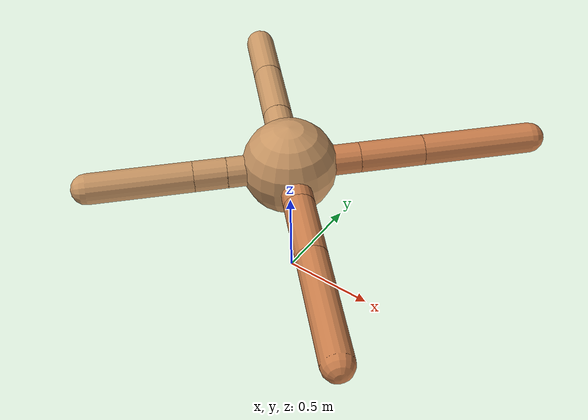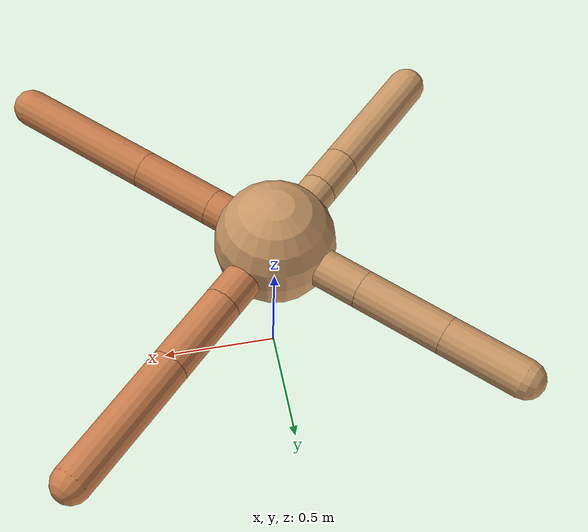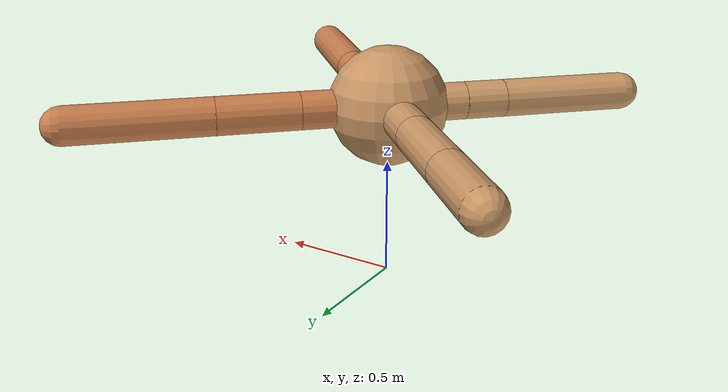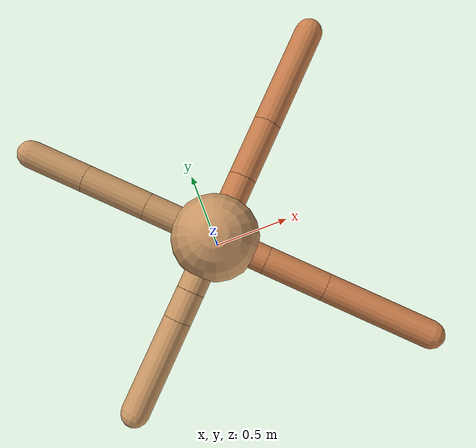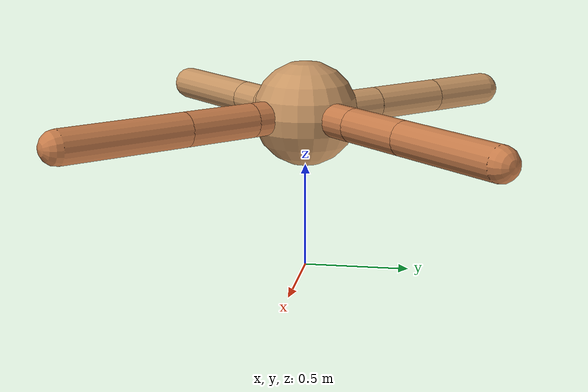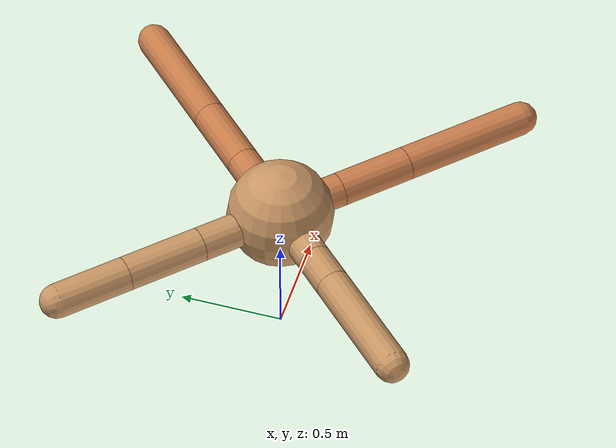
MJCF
<mujoco model="ant">
  <compiler angle="degree" coordinate="local" inertiafromgeom="true" />
  <option integrator="RK4" timestep="0.01" />
  <custom>
    <numeric data="0.0 0.0 0.55 1.0 0.0 0.0 0.0 0.0 1.0 0.0 -1.0 0.0 -1.0 0.0 1.0" name="init_qpos" />
  </custom>
  <default>
    <joint armature="1" damping="1" limited="true" />
    <geom conaffinity="0" condim="3" density="5.0" friction="1.5 0.1 0.1" margin="0.01" rgba="0.8 0.6 0.4 1" />
  </default>
  <worldbody>
    <body name="torso" pos="0 0 0.75">
      <geom name="torso_geom" pos="0 0 0" size="0.25" type="sphere" />

      <body name="front_left_leg" pos="0 0 0">
        <geom fromto="0.0 0.0 0.0 0.26120589891639706 0.26120589891639706 0.0" name="aux_1_geom" size="0.08" type="capsule" rgba=".8 .5 .3 1" />
        <body name="aux_1" pos="0.26120589891639706 0.26120589891639706 0.0">
          <joint axis="0 0 1" name="hip_1" pos="0.0 0.0 0.0" range="-40 40" type="hinge" />
          <geom fromto="0.0 0.0 0.0 0.24183796412765238 0.24183796412765238 0.0" name="left_leg_geom" size="0.08" type="capsule" rgba=".8 .5 .3 1" />
          <body pos="0.24183796412765238 0.24183796412765238 0.0" name="front_left_foot">
            <joint axis="-1 1 0" name="ankle_1" pos="0.0 0.0 0.0" range="30 100" type="hinge" />
            <geom fromto="0.0 0.0 0.0 0.41685504382933297 0.41685504382933297 0.0" name="left_ankle_geom" size="0.08" type="capsule" rgba=".8 .5 .3 1" />
          </body>
        </body>
      </body>
      <body name="front_right_leg" pos="0 0 0">
        <geom fromto="0.0 0.0 0.0 -0.2954890269431701 0.2954890269431701 0.0" name="aux_2_geom" size="0.08" type="capsule" />
        <body name="aux_2" pos="-0.2954890269431701 0.2954890269431701 0.0">
          <joint axis="0 0 1" name="hip_2" pos="0.0 0.0 0.0" range="-40 40" type="hinge" />
          <geom fromto="0.0 0.0 0.0 -0.2679755688614911 0.2679755688614911 0.0" name="right_leg_geom" size="0.08" type="capsule" />
          <body pos="-0.2679755688614911 0.2679755688614911 0.0" name="front_right_foot">
            <joint axis="1 1 0" name="ankle_2" pos="0.0 0.0 0.0" range="-100 -30" type="hinge" />
            <geom fromto="0.0 0.0 0.0 -0.24313109668159189 0.24313109668159189 0.0" name="right_ankle_geom" size="0.08" type="capsule" />
          </body>
        </body>
      </body>
      <body name="left_back_leg" pos="0 0 0">
        <geom fromto="0.0 0.0 0.0 -0.23222691743648377 -0.23222691743648377 0.0" name="aux_3_geom" size="0.08" type="capsule" />
        <body name="aux_3" pos="-0.23222691743648377 -0.23222691743648377 0.0">
          <joint axis="0 0 1" name="hip_3" pos="0.0 0.0 0.0" range="-40 40" type="hinge" />
          <geom fromto="0.0 0.0 0.0 -0.12157698370652259 -0.12157698370652259 0.0" name="back_leg_geom" size="0.08" type="capsule" />
          <body pos="-0.12157698370652259 -0.12157698370652259 0.0" name="left_back_foot">
            <joint axis="-1 1 0" name="ankle_3" pos="0.0 0.0 0.0" range="-100 -30" type="hinge" />
            <geom fromto="0.0 0.0 0.0 -0.382875741012376 -0.382875741012376 0.0" name="third_ankle_geom" size="0.08" type="capsule" />
          </body>
        </body>
      </body>
      <body name="right_back_leg" pos="0 0 0">
        <geom fromto="0.0 0.0 0.0 0.21805523971316682 -0.21805523971316682 0.0" name="aux_4_geom" size="0.08" type="capsule" rgba=".8 .5 .3 1" />
        <body name="aux_4" pos="0.21805523971316682 -0.21805523971316682 0.0">
          <joint axis="0 0 1" name="hip_4" pos="0.0 0.0 0.0" range="-40 40" type="hinge" />
          <geom fromto="0.0 0.0 0.0 0.25039709843845886 -0.25039709843845886 0.0" name="rightback_leg_geom" size="0.08" type="capsule" rgba=".8 .5 .3 1" />
          <body pos="0.25039709843845886 -0.25039709843845886 0.0" name="right_back_foot">
            <joint axis="1 1 0" name="ankle_4" pos="0.0 0.0 0.0" range="30 100" type="hinge" />
            <geom fromto="0.0 0.0 0.0 0.4447358243287832 -0.4447358243287832 0.0" name="fourth_ankle_geom" size="0.08" type="capsule" rgba=".8 .5 .3 1" />
          </body>
        </body>
      </body>
    </body>
  </worldbody>
  <actuator>
    <motor ctrllimited="true" ctrlrange="-1.0 1.0" joint="hip_4" gear="150" />
    <motor ctrllimited="true" ctrlrange="-1.0 1.0" joint="ankle_4" gear="150" />
    <motor ctrllimited="true" ctrlrange="-1.0 1.0" joint="hip_1" gear="150" />
    <motor ctrllimited="true" ctrlrange="-1.0 1.0" joint="ankle_1" gear="150" />
    <motor ctrllimited="true" ctrlrange="-1.0 1.0" joint="hip_2" gear="150" />
    <motor ctrllimited="true" ctrlrange="-1.0 1.0" joint="ankle_2" gear="150" />
    <motor ctrllimited="true" ctrlrange="-1.0 1.0" joint="hip_3" gear="150" />
    <motor ctrllimited="true" ctrlrange="-1.0 1.0" joint="ankle_3" gear="150" />
  </actuator>
</mujoco>
